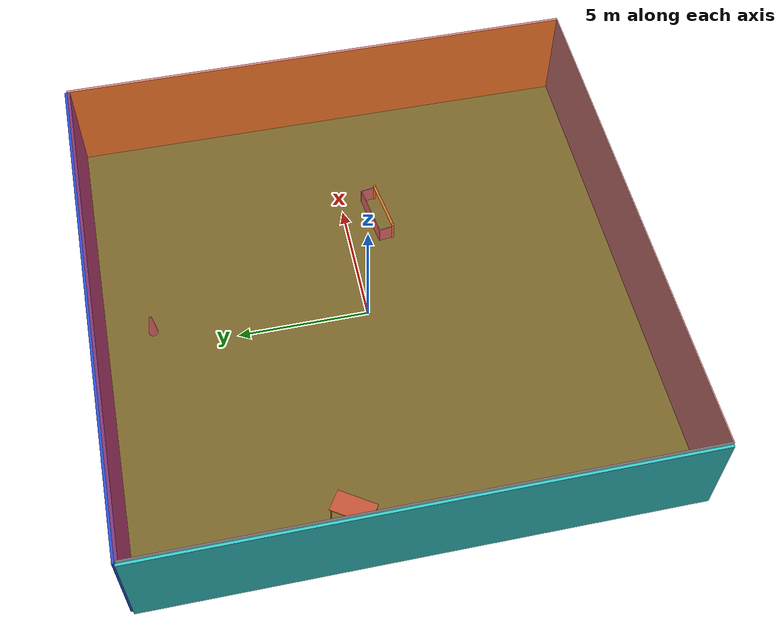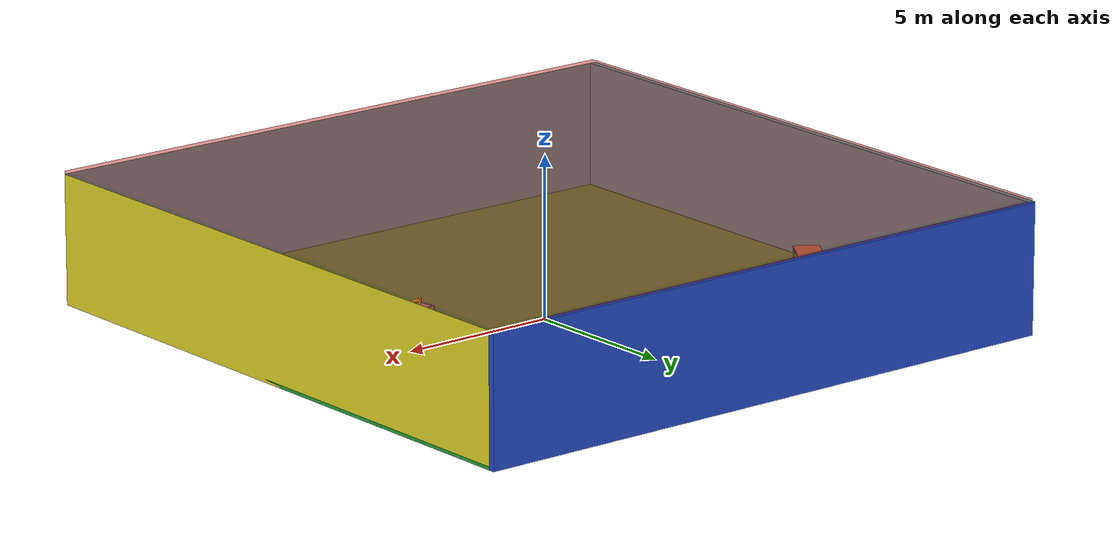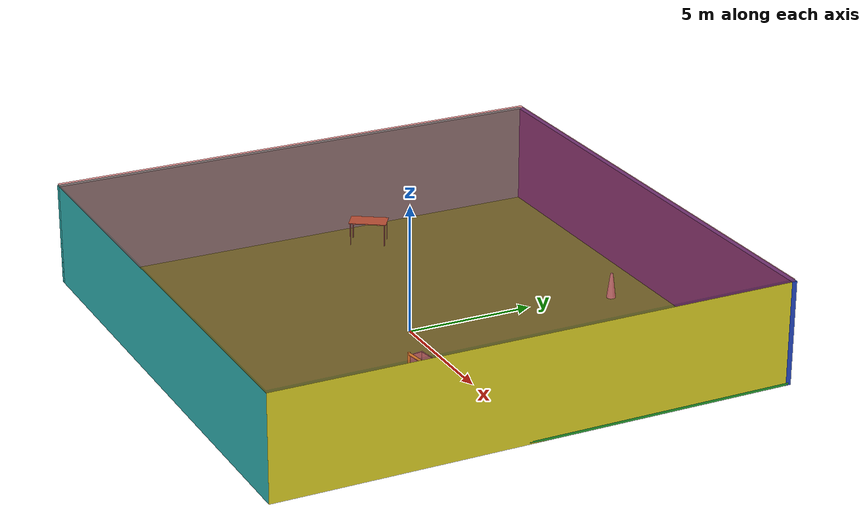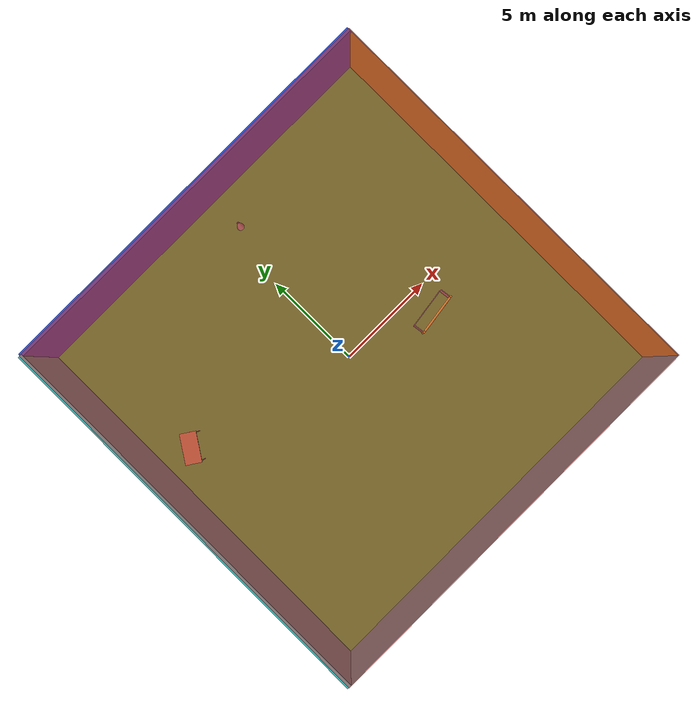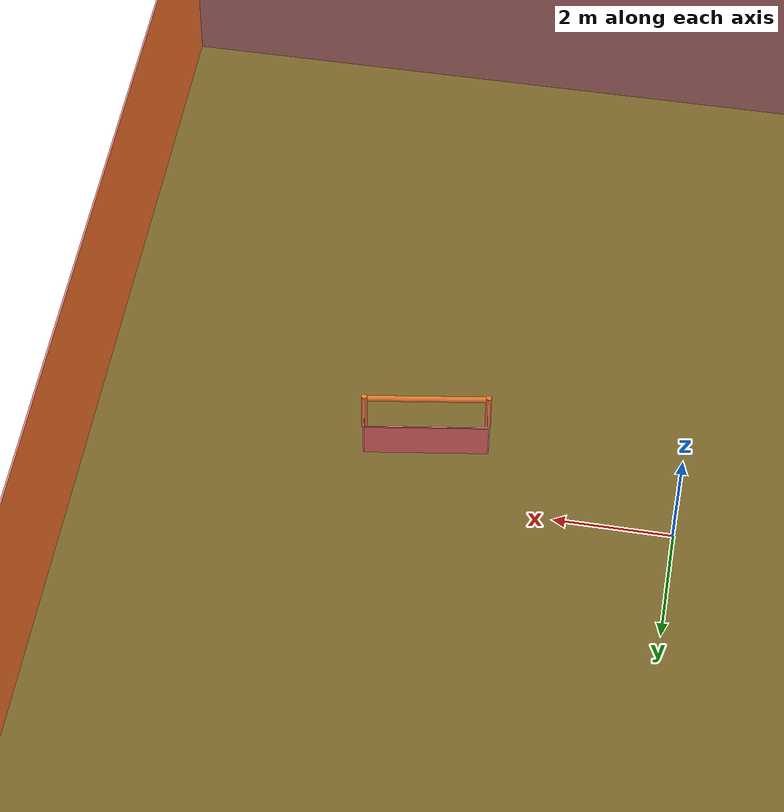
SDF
<sdf version="1.4">
 <world name="default">
  <physics type="ode">
   <max_step_size>0.001</max_step_size>
   <real_time_factor>1</real_time_factor>
   <real_time_update_rate>1000</real_time_update_rate>
   <gravity>0 0 -9.8</gravity>
  </physics>
  <scene><ambient>0.4 0.4 0.4 1</ambient><background>0.7 0.7 0.7 1</background><shadows>1</shadows></scene>
  <model name="Surrounding">
   <static>1</static>
   <link name="Ceiling">
    <collision name="Ceiling_Collision"><geometry><box><size>20 20 0.1</size></box></geometry></collision>
    <visual name="Ceiling_Visual">
     <geometry><box><size>20 20 0.1</size></box></geometry>
     <material>
      <script><uri>file://media/materials/scripts/gazebo.material</uri><name>Gazebo/RedTransparent</name></script>
     </material>
    </visual>
    <pose>0 0 4.05 0 0 0</pose>
   </link>
   <link name="Wall_South">
    <collision name="Wall_South_Collision">
     <geometry><box><size>20 0 4</size></box></geometry>
     <pose>0 0 2 0 -0 0</pose>
    </collision>
    <visual name="Wall_South_Visual">
     <pose>0 0 2 0 -0 0</pose>
     <geometry><box><size>20 0 4</size></box></geometry>
     <material>
      <script>
       <uri>file://media/materials/scripts/gazebo.material</uri>
       <name>Gazebo/TurquoiseGlowOutline</name>
      </script>
     </material>
    </visual>
    <velocity_decay><linear>0</linear><angular>0</angular></velocity_decay>
    <pose>0 -10 0 0 -0 0</pose>
   </link>
   <link name="Wall_East">
    <collision name="Wall_21_Collision">
     <geometry><box><size>20 0 4</size></box></geometry>
     <pose>0 0 2 0 -0 0</pose>
    </collision>
    <visual name="Wall_21_Visual">
     <pose>0 0 2 0 -0 0</pose>
     <geometry><box><size>20 0 4</size></box></geometry>
     <material>
      <script><uri>file://media/materials/scripts/gazebo.material</uri><name>Gazebo/YellowGlow</name></script>
     </material>
    </visual>
    <velocity_decay><linear>0</linear><angular>0</angular></velocity_decay>
    <pose>10 0 0 0 -0 1.5708</pose>
   </link>
   <link name="Wall_North">
    <collision name="Wall_22_Collision">
     <geometry><box><size>20 0.2 4</size></box></geometry>
     <pose>0 0 2 0 -0 0</pose>
    </collision>
    <visual name="Wall_22_Visual">
     <pose>0 0 2 0 -0 0</pose>
     <geometry><box><size>20 0.2 4</size></box></geometry>
     <material>
      <script><uri>file://media/materials/scripts/gazebo.material</uri><name>Gazebo/Blue</name></script>
     </material>
    </visual>
    <velocity_decay><linear>0</linear><angular>0</angular></velocity_decay>
    <pose>0 10 0 0 -0 0</pose>
   </link>
   <link name="Wall_West">
    <collision name="Wall_23_Collision">
     <geometry><box><size>20 0.2 4</size></box></geometry>
     <pose>0 0 2 0 -0 0</pose>
    </collision>
    <visual name="Wall_23_Visual">
     <pose>0 0 2 0 -0 0</pose>
     <geometry><box><size>20 0.2 4</size></box></geometry>
     <material>
      <script>
       <uri>file://media/materials/scripts/gazebo.material</uri>
       <name>Gazebo/TurquoiseGlowOutline</name>
      </script>
     </material>
    </visual>
    <velocity_decay><linear>0</linear><angular>0</angular></velocity_decay>
    <pose>-10 0 0 0 0 -1.5708</pose>
   </link>
   <link name="Ground_link">
    <collision name="collision">
     <pose>0 0 .05 0 -0 0</pose>
     <geometry><box><size>20 20 0.1</size></box></geometry>
    </collision>
    <visual name="visual">
     <pose>0 0 .05 0 -0 0</pose>
     <geometry><box><size>20 20 0.1</size></box></geometry>
     <material>
      <script><uri>file://media/materials/scripts/gazebo.material</uri><name>Gazebo/Green</name></script>
     </material>
    </visual>
   </link>
   <static>1</static>
  </model>
  <spherical_coordinates>
   <surface_model>EARTH_WGS84</surface_model>
   <latitude_deg>0</latitude_deg>
   <longitude_deg>0</longitude_deg>
   <elevation>0</elevation>
   <heading_deg>0</heading_deg>
  </spherical_coordinates>
  <light name="lightball_0" type="diffuse">
   <diffuse>0.8 0.8 0.8 1</diffuse>
   <specular>0.2 0.2 0.2 1</specular>
   <attenuation>
    <range>100</range>
    <constant>0.7</constant>
    <linear>0.01</linear>
    <quadratic>0.001</quadratic>
   </attenuation>
   <direction>-0.5 0.1 -0.9</direction>
   <pose>-3.7845754182 3.40299087918 2.55842339119 0 0 0</pose>
  </light>
  <light name="lightball_1" type="diffuse">
   <diffuse>0.8 0.8 0.8 1</diffuse>
   <specular>0.2 0.2 0.2 1</specular>
   <attenuation>
    <range>100</range>
    <constant>0.7</constant>
    <linear>0.01</linear>
    <quadratic>0.001</quadratic>
   </attenuation>
   <direction>-0.5 0.1 -0.9</direction>
   <pose>-8.14229331031 2.29330902332 2.87249444 0 0 0</pose>
  </light>
  <light name="lightball_2" type="diffuse">
   <diffuse>0.8 0.8 0.8 1</diffuse>
   <specular>0.2 0.2 0.2 1</specular>
   <attenuation>
    <range>100</range>
    <constant>0.7</constant>
    <linear>0.01</linear>
    <quadratic>0.001</quadratic>
   </attenuation>
   <direction>-0.5 0.1 -0.9</direction>
   <pose>9.61194878628 -3.17381148337 2.43216023679 0 0 0</pose>
  </light>
  <light name="lightball_3" type="diffuse">
   <diffuse>0.8 0.8 0.8 1</diffuse>
   <specular>0.2 0.2 0.2 1</specular>
   <attenuation>
    <range>100</range>
    <constant>0.7</constant>
    <linear>0.01</linear>
    <quadratic>0.001</quadratic>
   </attenuation>
   <direction>-0.5 0.1 -0.9</direction>
   <pose>-3.29595250256 2.03610961744 0.730686661845 0 0 0</pose>
  </light>
  <light name="lightball_4" type="diffuse">
   <diffuse>0.8 0.8 0.8 1</diffuse>
   <specular>0.2 0.2 0.2 1</specular>
   <attenuation>
    <range>100</range>
    <constant>0.7</constant>
    <linear>0.01</linear>
    <quadratic>0.001</quadratic>
   </attenuation>
   <direction>-0.5 0.1 -0.9</direction>
   <pose>6.18392923752 -3.17362160999 1.57448106766 0 0 0</pose>
  </light>
  <light name="lightball_5" type="diffuse">
   <diffuse>0.8 0.8 0.8 1</diffuse>
   <specular>0.2 0.2 0.2 1</specular>
   <attenuation>
    <range>100</range>
    <constant>0.7</constant>
    <linear>0.01</linear>
    <quadratic>0.001</quadratic>
   </attenuation>
   <direction>-0.5 0.1 -0.9</direction>
   <pose>-4.25111353867 -0.837756226541 3.18917270164 0 0 0</pose>
  </light>
  <light name="lightball_6" type="diffuse">
   <diffuse>0.8 0.8 0.8 1</diffuse>
   <specular>0.2 0.2 0.2 1</specular>
   <attenuation>
    <range>100</range>
    <constant>0.7</constant>
    <linear>0.01</linear>
    <quadratic>0.001</quadratic>
   </attenuation>
   <direction>-0.5 0.1 -0.9</direction>
   <pose>6.20684241956 4.67832946177 2.91996553956 0 0 0</pose>
  </light>
  <light name="lightball_7" type="diffuse">
   <diffuse>0.8 0.8 0.8 1</diffuse>
   <specular>0.2 0.2 0.2 1</specular>
   <attenuation>
    <range>100</range>
    <constant>0.7</constant>
    <linear>0.01</linear>
    <quadratic>0.001</quadratic>
   </attenuation>
   <direction>-0.5 0.1 -0.9</direction>
   <pose>-1.69940980552 -7.73766865477 2.59583454647 0 0 0</pose>
  </light>
  <light name="lightball_8" type="diffuse">
   <diffuse>0.8 0.8 0.8 1</diffuse>
   <specular>0.2 0.2 0.2 1</specular>
   <attenuation>
    <range>100</range>
    <constant>0.7</constant>
    <linear>0.01</linear>
    <quadratic>0.001</quadratic>
   </attenuation>
   <direction>-0.5 0.1 -0.9</direction>
   <pose>-9.87946461333 -9.14378729329 3.25826602353 0 0 0</pose>
  </light>
  <light name="lightball_9" type="diffuse">
   <diffuse>0.8 0.8 0.8 1</diffuse>
   <specular>0.2 0.2 0.2 1</specular>
   <attenuation>
    <range>100</range>
    <constant>0.7</constant>
    <linear>0.01</linear>
    <quadratic>0.001</quadratic>
   </attenuation>
   <direction>-0.5 0.1 -0.9</direction>
   <pose>1.70555109824 -2.40755693114 3.3015124831 0 0 0</pose>
  </light>
  <light name="lightball_10" type="diffuse">
   <diffuse>0.8 0.8 0.8 1</diffuse>
   <specular>0.2 0.2 0.2 1</specular>
   <attenuation>
    <range>100</range>
    <constant>0.7</constant>
    <linear>0.01</linear>
    <quadratic>0.001</quadratic>
   </attenuation>
   <direction>-0.5 0.1 -0.9</direction>
   <pose>-4.54462962321 0.207172277873 1.49427186821 0 0 0</pose>
  </light>
  <light name="lightball_11" type="diffuse">
   <diffuse>0.8 0.8 0.8 1</diffuse>
   <specular>0.2 0.2 0.2 1</specular>
   <attenuation>
    <range>100</range>
    <constant>0.7</constant>
    <linear>0.01</linear>
    <quadratic>0.001</quadratic>
   </attenuation>
   <direction>-0.5 0.1 -0.9</direction>
   <pose>3.6585800036 2.23407213226 0.68084415075 0 0 0</pose>
  </light>
  <light name="lightball_12" type="diffuse">
   <diffuse>0.8 0.8 0.8 1</diffuse>
   <specular>0.2 0.2 0.2 1</specular>
   <attenuation>
    <range>100</range>
    <constant>0.7</constant>
    <linear>0.01</linear>
    <quadratic>0.001</quadratic>
   </attenuation>
   <direction>-0.5 0.1 -0.9</direction>
   <pose>5.07053759149 -1.8980070874 2.35616851778 0 0 0</pose>
  </light>
  <light name="lightball_13" type="diffuse">
   <diffuse>0.8 0.8 0.8 1</diffuse>
   <specular>0.2 0.2 0.2 1</specular>
   <attenuation>
    <range>100</range>
    <constant>0.7</constant>
    <linear>0.01</linear>
    <quadratic>0.001</quadratic>
   </attenuation>
   <direction>-0.5 0.1 -0.9</direction>
   <pose>2.84255909671 -4.76819508503 3.75187063618 0 0 0</pose>
  </light>
  <include><uri>model://table</uri><pose>-8.27981510049 2.23031284586 0 0 0 0.991760539898</pose></include>
  <include>
   <uri>model://construction_cone</uri>
   <pose>0.758847795739 8.14811089218 0 0 0 0.432090444745</pose>
  </include>
  <include>
   <uri>model://robocup_3Dsim_goal</uri>
   <pose>4.37131867497 -1.53692674944 0 0 0 1.71630230775</pose>
  </include>
 </world>
</sdf>

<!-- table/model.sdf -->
<sdf version="1.5">
  <model name="table">
    <static>true</static>
    <link name="link">
      <collision name="surface">
        <pose>0 0 1.0 0 0 0</pose>
        <geometry>
          <box>
            <size>1.5 0.8 0.03</size>
          </box>
        </geometry>
        <surface>
          <friction>
            <ode>
              <mu>0.6</mu>
              <mu2>0.6</mu2>
            </ode>
          </friction>
        </surface>
      </collision>
      <visual name="visual1">
        <pose>0 0 1.0 0 0 0</pose>
        <geometry>
          <box>
            <size>1.5 0.8 0.03</size>
          </box>
        </geometry>
        <material>
          <script>
            <uri>model://media/materials/scripts/gazebo.material</uri>
            <name>Gazebo/Wood</name>
          </script>
        </material>
      </visual>
      <collision name="front_left_leg">
        <pose>0.68 0.38 0.5 0 0 0</pose>
        <geometry>
          <cylinder>
            <radius>0.02</radius>
            <length>1.0</length>
          </cylinder>
        </geometry>
      </collision>
      <visual name="front_left_leg">
        <pose>0.68 0.38 0.5 0 0 0</pose>
        <geometry>
          <cylinder>
            <radius>0.02</radius>
            <length>1.0</length>
          </cylinder>
        </geometry>
        <material>
          <script>
            <uri>model://media/materials/scripts/gazebo.material</uri>
            <name>Gazebo/Grey</name>
          </script>
        </material>
      </visual>
      <collision name="front_right_leg">
        <pose>0.68 -0.38 0.5 0 0 0</pose>
        <geometry>
          <cylinder>
            <radius>0.02</radius>
            <length>1.0</length>
          </cylinder>
        </geometry>
      </collision>
      <visual name="front_right_leg">
        <pose>0.68 -0.38 0.5 0 0 0</pose>
        <geometry>
          <cylinder>
            <radius>0.02</radius>
            <length>1.0</length>
          </cylinder>
        </geometry>
        <material>
          <script>
            <uri>model://media/materials/scripts/gazebo.material</uri>
            <name>Gazebo/Grey</name>
          </script>
        </material>
      </visual>
      <collision name="back_right_leg">
        <pose>-0.68 -0.38 0.5 0 0 0</pose>
        <geometry>
          <cylinder>
            <radius>0.02</radius>
            <length>1.0</length>
          </cylinder>
        </geometry>
      </collision>
      <visual name="back_right_leg">
        <pose>-0.68 -0.38 0.5 0 0 0</pose>
        <geometry>
          <cylinder>
            <radius>0.02</radius>
            <length>1.0</length>
          </cylinder>
        </geometry>
        <material>
          <script>
            <uri>model://media/materials/scripts/gazebo.material</uri>
            <name>Gazebo/Grey</name>
          </script>
        </material>
      </visual>
      <collision name="back_left_leg">
        <pose>-0.68 0.38 0.5 0 0 0</pose>
        <geometry>
          <cylinder>
            <radius>0.02</radius>
            <length>1.0</length>
          </cylinder>
        </geometry>
      </collision>
      <visual name="back_left_leg">
        <pose>-0.68 0.38 0.5 0 0 0</pose>
        <geometry>
          <cylinder>
            <radius>0.02</radius>
            <length>1.0</length>
          </cylinder>
        </geometry>
        <material>
          <script>
            <uri>model://media/materials/scripts/gazebo.material</uri>
            <name>Gazebo/Grey</name>
          </script>
        </material>
      </visual>
    </link>
  </model>
</sdf>

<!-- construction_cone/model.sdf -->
<sdf version="1.5">
  <model name="Construction Cone">
    <link name="link">
      <collision name="collision">
        <geometry>
          <mesh>
            <scale>10 10 10</scale>
            <uri>file://isr-testbed/construction_cone/meshes/construction_cone.dae</uri>
          </mesh>
        </geometry>
      </collision>
      <visual name="visual">
        <geometry>
          <mesh>
            <scale>10 10 10</scale>
            <uri>file://isr-testbed/construction_cone/meshes/construction_cone.dae</uri>
          </mesh>
        </geometry>
      </visual>
    </link>
  </model>
</sdf>

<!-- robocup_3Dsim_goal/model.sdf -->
<sdf version="1.5">
  <model name="robocup_3d_goal">
    <static>true</static>
    <link name="left_post">
      <pose>0 1.05 0.45 0 0 0</pose>
      <collision name="collision">
        <geometry>
          <cylinder>
            <radius>0.05</radius>
            <length>0.9</length>
          </cylinder>
        </geometry>
      </collision>
      <visual name="visual">
        <geometry>
          <cylinder>
            <radius>0.05</radius>
            <length>0.9</length>
          </cylinder>
        </geometry>
        <material>
          <script>
            <uri>file://media/materials/scripts/gazebo.material</uri>
            <name>Gazebo/ZincYellow</name>
          </script>
        </material>
      </visual>
    </link>
    <link name="left_support_horiz_lower">
      <pose>0.30 1.05 0.01 0 0 0</pose>
      <collision name="collision">
        <geometry>
          <box>
            <size>0.50 0.02 0.02</size>
          </box>
        </geometry>
      </collision>
      <visual name="visual">
        <geometry>
          <box>
            <size>0.50 0.02 0.02</size>
          </box>
        </geometry>
        <material>
          <script>
            <uri>file://media/materials/scripts/gazebo.material</uri>
            <name>Gazebo/White</name>
          </script>
        </material>
      </visual>
    </link>
    <link name="left_support_horiz_upper">
      <pose>0.30 1.05 0.79 0 0 0</pose>
      <collision name="collision">
        <geometry>
          <box>
            <size>0.50 0.02 0.02</size>
          </box>
        </geometry>
      </collision>
      <visual name="visual">
        <geometry>
          <box>
            <size>0.50 0.02 0.02</size>
          </box>
        </geometry>
        <material>
          <script>
            <uri>file://media/materials/scripts/gazebo.material</uri>
            <name>Gazebo/White</name>
          </script>
        </material>
      </visual>
    </link>
    <link name="left_support_vertical">
      <pose>0.56 1.05 0.4 0 1.5708 0</pose>
      <collision name="collision">
        <geometry>
          <box>
            <size>0.80 0.02 0.02</size>
          </box>
        </geometry>
      </collision>
      <visual name="visual">
        <geometry>
          <box>
            <size>0.80 0.02 0.02</size>
          </box>
        </geometry>
        <material>
          <script>
            <uri>file://media/materials/scripts/gazebo.material</uri>
            <name>Gazebo/White</name>
          </script>
        </material>
      </visual>
    </link>
    <link name="right_support_horiz_lower">
      <pose>0.30 -1.05 0.01 0 0 0</pose>
      <collision name="collision">
        <geometry>
          <box>
            <size>0.50 0.02 0.02</size>
          </box>
        </geometry>
      </collision>
      <visual name="visual">
        <geometry>
          <box>
            <size>0.50 0.02 0.02</size>
          </box>
        </geometry>
        <material>
          <script>
            <uri>file://media/materials/scripts/gazebo.material</uri>
            <name>Gazebo/White</name>
          </script>
        </material>
      </visual>
    </link>
    <link name="right_support_horiz_upper">
      <pose>0.30 -1.05 0.79 0 0 0</pose>
      <collision name="collision">
        <geometry>
          <box>
            <size>0.50 0.02 0.02</size>
          </box>
        </geometry>
      </collision>
      <visual name="visual">
        <geometry>
          <box>
            <size>0.50 0.02 0.02</size>
          </box>
        </geometry>
        <material>
          <script>
            <uri>file://media/materials/scripts/gazebo.material</uri>
            <name>Gazebo/White</name>
          </script>
        </material>
      </visual>
    </link>
    <link name="right_support_vertical">
      <pose>0.56 -1.05 0.4 0 1.5708 0</pose>
      <collision name="collision">
        <geometry>
          <box>
            <size>0.80 0.02 0.02</size>
          </box>
        </geometry>
      </collision>
      <visual name="visual">
        <geometry>
          <box>
            <size>0.80 0.02 0.02</size>
          </box>
        </geometry>
        <material>
          <script>
            <uri>file://media/materials/scripts/gazebo.material</uri>
            <name>Gazebo/White</name>
          </script>
        </material>
      </visual>
    </link>
    <link name="center_support_horiz_lower">
      <pose>0.56 0 0.01 0 1.5708 0</pose>
      <collision name="collision">
        <geometry>
          <box>
            <size>0.02 2.08 0.02</size>
          </box>
        </geometry>
      </collision>
      <visual name="visual">
        <geometry>
          <box>
            <size>0.02 2.08 0.02</size>
          </box>
        </geometry>
        <material>
          <script>
            <uri>file://media/materials/scripts/gazebo.material</uri>
            <name>Gazebo/White</name>
          </script>
        </material>
      </visual>
    </link>
    <link name="center_support_horiz_upper">
      <pose>0.56 0 0.79 0 1.5708 0</pose>
      <collision name="collision">
        <geometry>
          <box>
            <size>0.02 2.08 0.02</size>
          </box>
        </geometry>
      </collision>
      <visual name="visual">
        <geometry>
          <box>
            <size>0.02 2.08 0.02</size>
          </box>
        </geometry>
        <material>
          <script>
            <uri>file://media/materials/scripts/gazebo.material</uri>
            <name>Gazebo/White</name>
          </script>
        </material>
      </visual>
    </link>
    <link name="right_post">
      <pose>0 -1.05 0.45 0 0 0</pose>
      <collision name="collision">
        <geometry>
          <cylinder>
            <radius>0.05</radius>
            <length>0.9</length>
          </cylinder>
        </geometry>
      </collision>
      <visual name="visual">
        <geometry>
          <cylinder>
            <radius>0.05</radius>
            <length>0.9</length>
          </cylinder>
        </geometry>
        <material>
          <script>
            <uri>file://media/materials/scripts/gazebo.material</uri>
            <name>Gazebo/ZincYellow</name>
          </script>
        </material>
      </visual>
    </link>
    <link name="crossbar">
      <pose>0 0 0.85 1.57 1.57 0</pose>
      <collision name="collision">
        <geometry>
          <cylinder>
            <radius>0.05</radius>
            <length>2.0</length>
          </cylinder>
        </geometry>
      </collision>
      <visual name="visual">
        <geometry>
          <cylinder>
            <radius>0.05</radius>
            <length>2.0</length>
          </cylinder>
        </geometry>
        <material>
          <script>
            <uri>file://media/materials/scripts/gazebo.material</uri>
            <name>Gazebo/ZincYellow</name>
          </script>
        </material>
      </visual>
    </link>
    <link name="center_net">
      <pose>0.56 0 0.40 0 0 0</pose>
      <collision name="collision">
        <geometry>
          <box>
            <size>0.01 2.1 0.80</size>
          </box>
        </geometry>
      </collision>
      <visual name="visual">
        <geometry>
          <box>
            <size>0.01 2.1 0.80</size>
          </box>
        </geometry>
        <material>
          <script>
            <uri>model://../model_source/models/robocup09_spl_field/materials/scripts/</uri>
            <uri>model://../model_source/models/robocup09_spl_field/materials/textures/</uri>
            <name>RoboCup/Net</name>
          </script>
        </material>
      </visual>
    </link>
    <link name="left_net">
      <pose>0.30 1.05 0.40 0 0 0</pose>
      <collision name="collision">
        <geometry>
          <box>
            <size>0.50 0.01 0.76</size>
          </box>
        </geometry>
      </collision>
      <visual name="visual">
        <geometry>
          <box>
            <size>0.50 0.01 0.76</size>
          </box>
        </geometry>
        <material>
          <script>
            <uri>model://../model_source/models/robocup09_spl_field/materials/scripts/</uri>
            <uri>model://../model_source/models/robocup09_spl_field/materials/textures/</uri>
            <name>RoboCup/Net</name>
          </script>
        </material>
      </visual>
    </link>
    <link name="right_net">
      <pose>0.30 -1.05 0.40 0 0 0</pose>
      <collision name="collision">
        <geometry>
          <box>
            <size>0.50 0.01 0.76</size>
          </box>
        </geometry>
      </collision>
      <visual name="visual">
        <geometry>
          <box>
            <size>0.50 0.01 0.76</size>
          </box>
        </geometry>
        <material>
          <script>
            <uri>model://../model_source/models/robocup09_spl_field/materials/scripts/</uri>
            <uri>model://../model_source/models/robocup09_spl_field/materials/textures/</uri>
            <name>RoboCup/Net</name>
          </script>
        </material>
      </visual>
    </link>
  </model>
</sdf>
